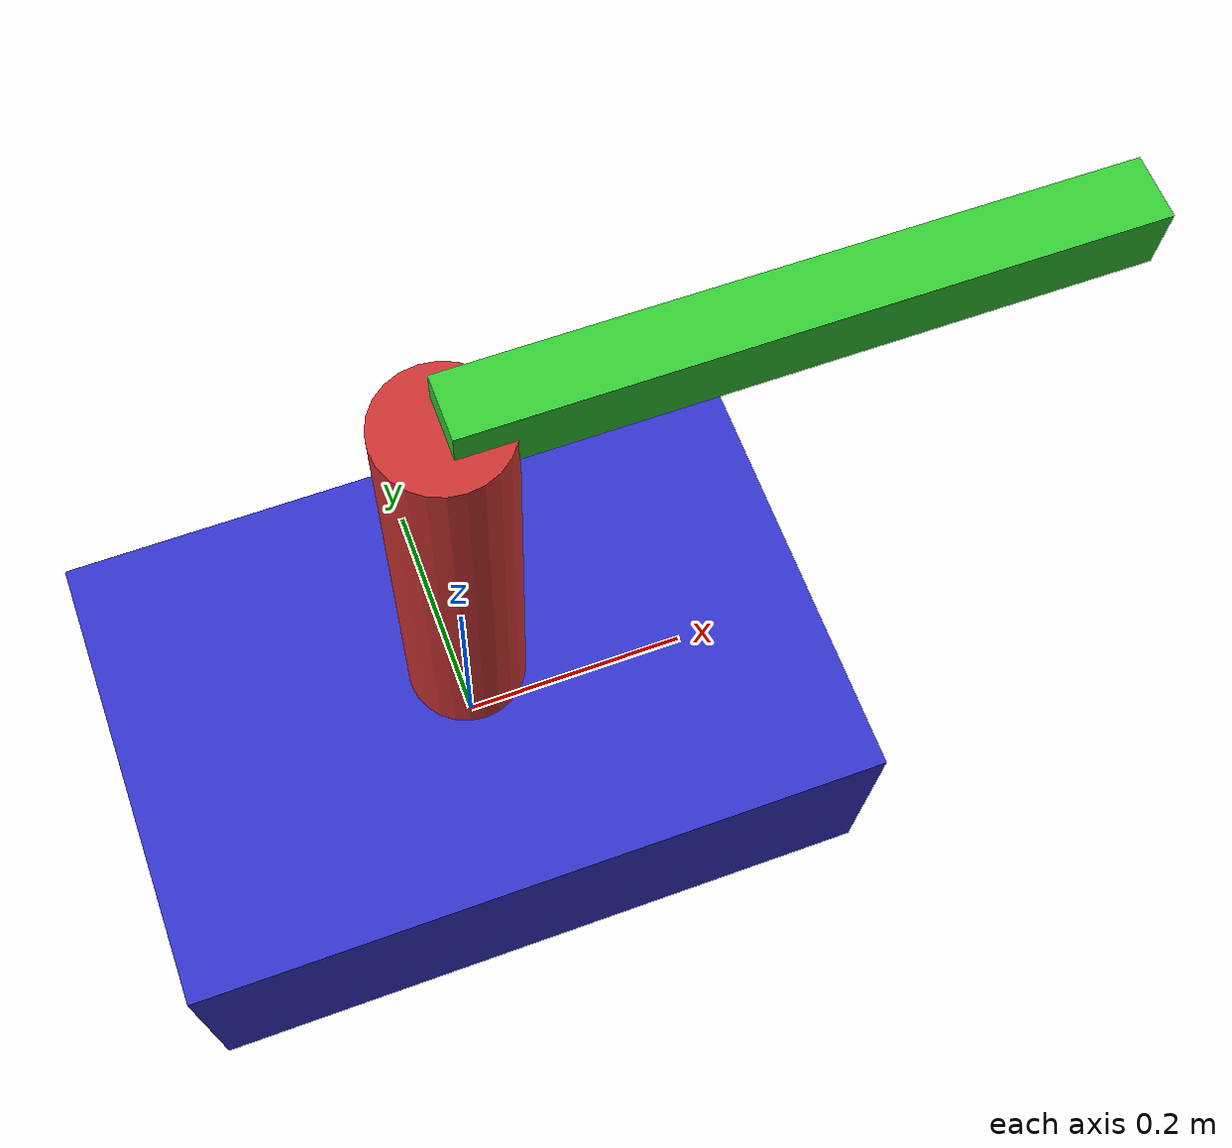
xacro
<?xml version="1.0"?>
<robot name="simple_robot" xmlns:xacro="http://www.ros.org/wiki/xacro">

    <!-- ============ 引入通用宏 ============ -->
    <xacro:include filename="common_macros.xacro" />

    <!-- ================= 属性定义 ================= -->
    <xacro:property name="base_length" value="0.6" />
    <xacro:property name="base_width" value="0.4" />
    <xacro:property name="base_height" value="0.2" />
    <xacro:property name="base_mass" value="5.0" />

    <xacro:property name="column_radius" value="0.05" />
    <xacro:property name="column_length" value="0.4" />
    <xacro:property name="column_mass" value="1.0" />

    <xacro:property name="arm_length" value="0.5" />
    <xacro:property name="arm_width" value="0.05" />
    <xacro:property name="arm_height" value="0.05" />
    <xacro:property name="arm_mass" value="0.5" />

    <xacro:property name="column_z" value="0.3" />
    <xacro:property name="arm_z" value="0.2" />

    <!-- ============ 材质 ============ -->
    <xacro:declare_material name="blue" rgba="0.2 0.2 0.8 1.0" />
    <xacro:declare_material name="red" rgba="0.8 0.2 0.2 1.0" />
    <xacro:declare_material name="green" rgba="0.2 0.8 0.2 1.0" />

    <!-- ================= 用宏生成 link ================= -->
    <xacro:box_link name="base_link" length="${base_length}" width="${base_width}"
        height="${base_height}" mass="${base_mass}" color="blue" />

    <xacro:cylinder_link name="column_link" radius="${column_radius}" length="${column_length}"
        mass="${column_mass}" color="red" />

    <xacro:box_link name="arm_link" length="${arm_length}" width="${arm_width}"
        height="${arm_height}" mass="${arm_mass}" color="green" origin="${arm_length/2} 0 0" />

    <!-- ================= 关节 ================= -->
    <joint name="base_to_column" type="fixed">
        <parent link="base_link" />
        <child link="column_link" />
        <origin xyz="0 0 ${column_z}" rpy="0 0 0" />
    </joint>

    <joint name="column_to_arm" type="revolute">
        <parent link="column_link" />
        <child link="arm_link" />
        <origin xyz="0 0 ${arm_z}" rpy="0 0 0" />
        <axis xyz="0 1 0" />
        <limit lower="-1.57" upper="1.57" effort="10.0" velocity="1.0" />
    </joint>

</robot>

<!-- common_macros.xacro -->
<robot xmlns:xacro="http://www.ros.org/wiki/xacro">

    <!-- ============ 通用材质 ============ -->
    <xacro:macro name="declare_material" params="name rgba">
        <material name="${name}">
            <color rgba="${rgba}" />
        </material>
    </xacro:macro>

    <!-- ============ 长方体 link ============ -->
    <xacro:macro name="box_link" params="name length width height mass color origin:='0 0 0'">
        <link name="${name}">
            <visual>
                <geometry>
                    <box size="${length} ${width} ${height}" />
                </geometry>
                <origin xyz="${origin}" rpy="0 0 0" />
                <material name="${color}" />
            </visual>
            <collision>
                <geometry>
                    <box size="${length} ${width} ${height}" />
                </geometry>
                <origin xyz="${origin}" rpy="0 0 0" />
            </collision>
            <inertial>
                <origin xyz="${origin}" rpy="0 0 0" />
                <mass value="${mass}" />
                <inertia
                    ixx="${mass * (width*width + height*height) / 12}"
                    ixy="0.0" ixz="0.0"
                    iyy="${mass * (length*length + height*height) / 12}"
                    iyz="0.0"
                    izz="${mass * (length*length + width*width) / 12}" />
            </inertial>
        </link>
    </xacro:macro>

    <!-- ============ 圆柱 link ============ -->
    <xacro:macro name="cylinder_link" params="name radius length mass color origin:='0 0 0'">
        <link name="${name}">
            <visual>
                <geometry>
                    <cylinder radius="${radius}" length="${length}" />
                </geometry>
                <origin xyz="${origin}" rpy="0 0 0" />
                <material name="${color}" />
            </visual>
            <collision>
                <geometry>
                    <cylinder radius="${radius}" length="${length}" />
                </geometry>
                <origin xyz="${origin}" rpy="0 0 0" />
            </collision>
            <inertial>
                <origin xyz="${origin}" rpy="0 0 0" />
                <mass value="${mass}" />
                <inertia
                    ixx="${mass * (3*radius*radius + length*length) / 12}"
                    ixy="0.0" ixz="0.0"
                    iyy="${mass * (3*radius*radius + length*length) / 12}"
                    iyz="0.0"
                    izz="${mass * radius * radius / 2}" />
            </inertial>
        </link>
    </xacro:macro>

</robot>
